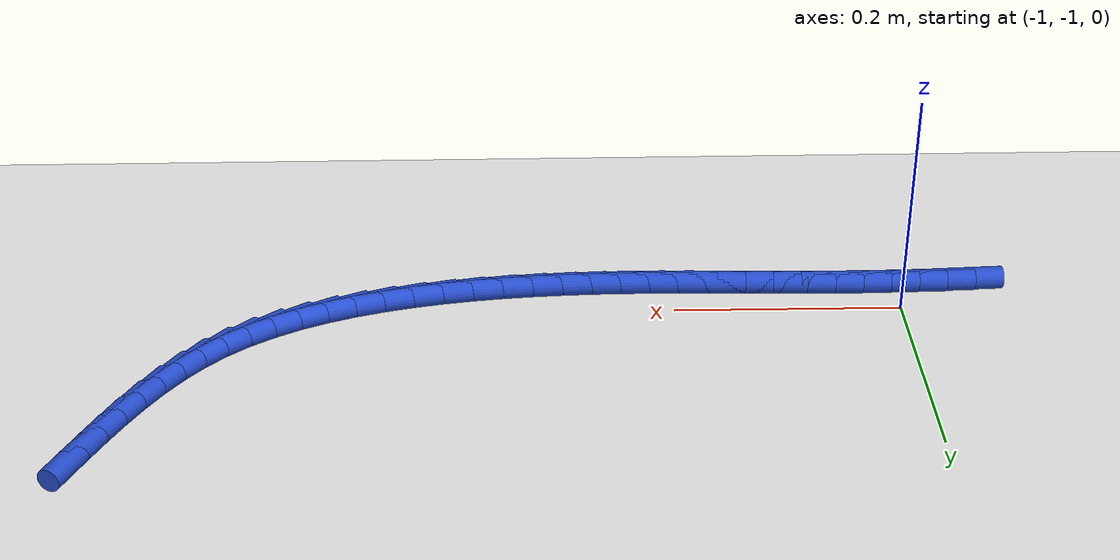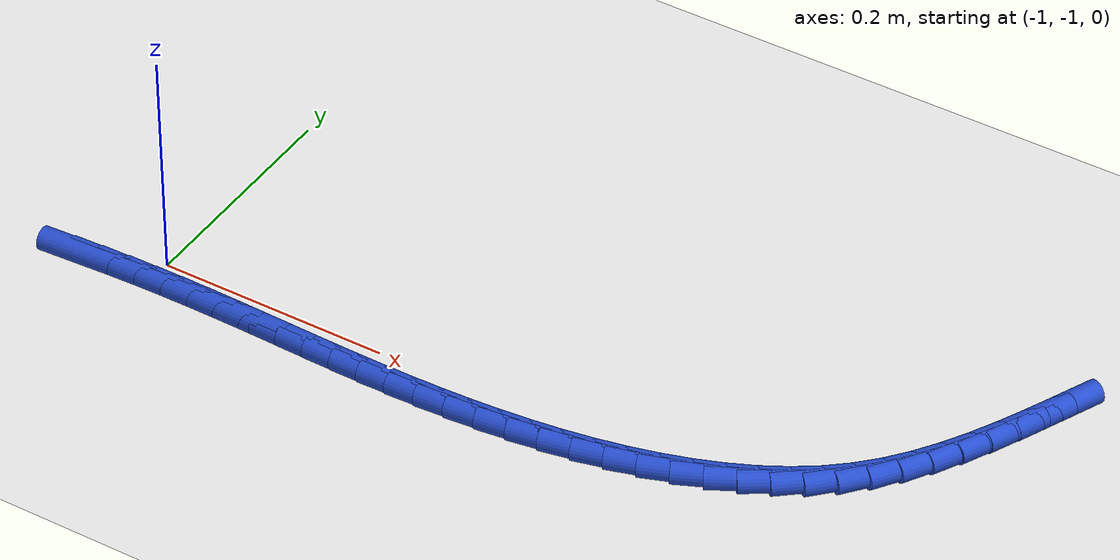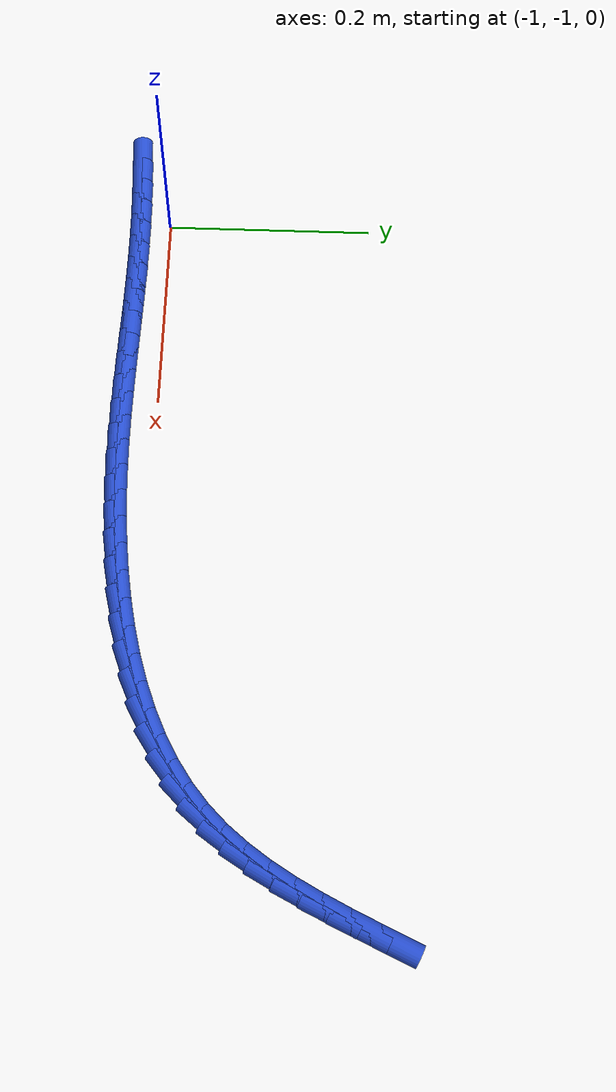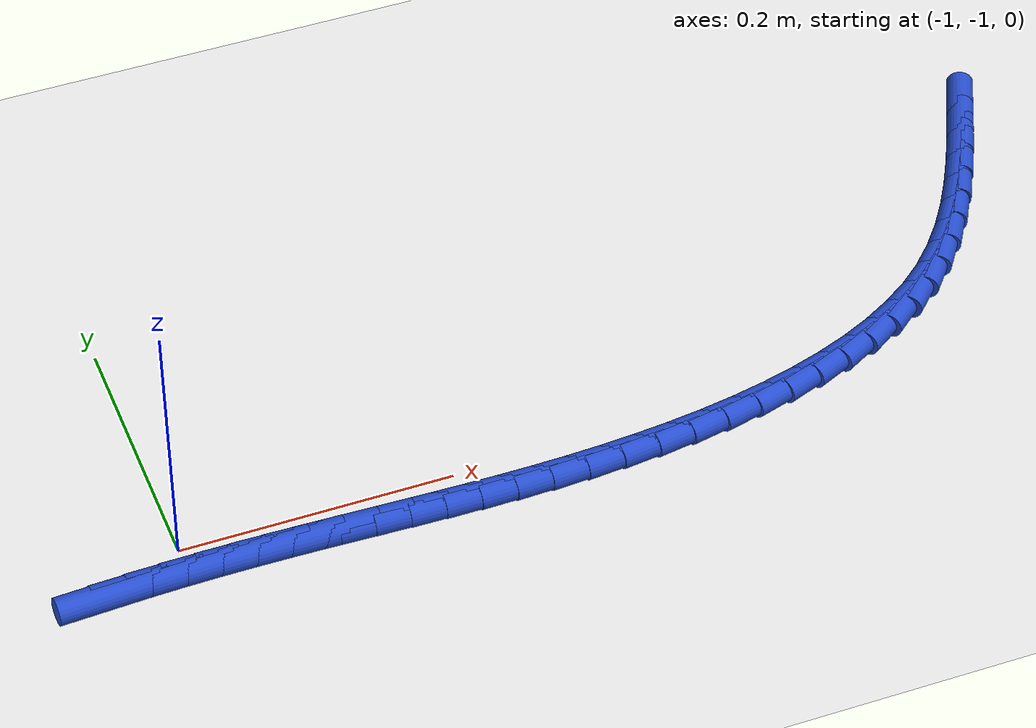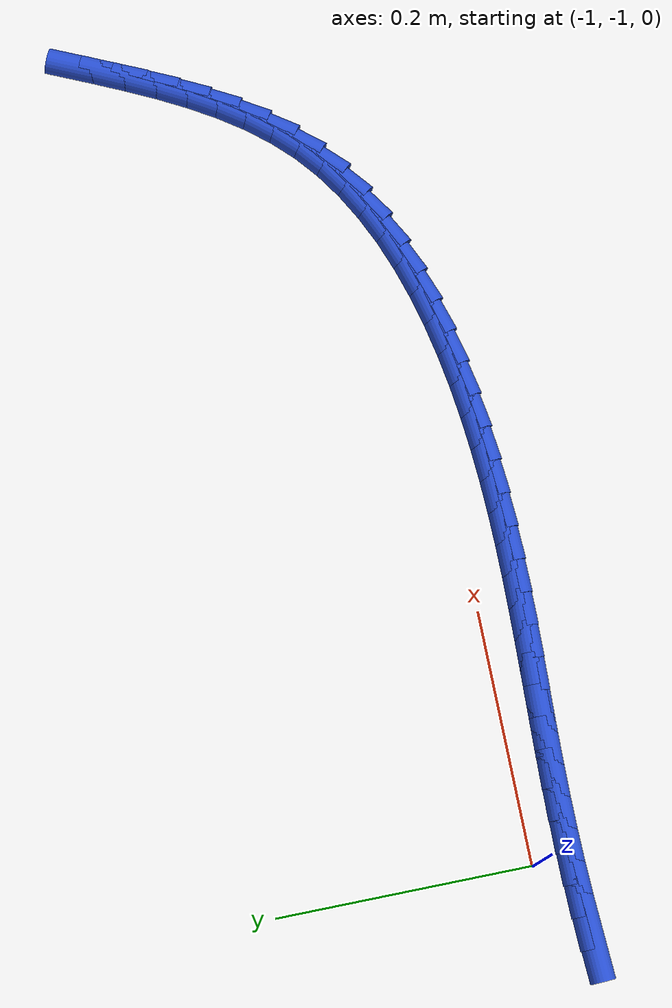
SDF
<sdf version="1.6">
 <world name="default">
  <model name="ground_plane">
   <static>1</static>
   <link name="link">
    <collision name="collision">
     <geometry><plane><normal>0 0 1</normal><size>100 100</size></plane></geometry>
     <surface><friction><ode><mu>100</mu><mu2>50</mu2></ode></friction></surface>
    </collision>
    <visual name="visual">
     <cast_shadows>0</cast_shadows>
     <geometry><plane><normal>0 0 1</normal><size>100 100</size></plane></geometry>
     <material>
      <script><uri>file://media/materials/scripts/gazebo.material</uri><name>Gazebo/WhiteGlow</name></script>
     </material>
    </visual>
   </link>
  </model>
  <model name="line">
   <link name="link_203">
    <pose>-1.055503518104487 -1.0314626179936124 0.01 0 1.57 0.05116919526881509</pose>
    <collision name="collision">
     <geometry><cylinder><radius>0.01</radius><length>0.08</length></cylinder></geometry>
    </collision>
    <visual name="visual">
     <material>
      <script><name>Gazebo/Blue</name><uri>file://media/materials/scripts/gazebo.material</uri></script>
     </material>
     <geometry><cylinder><radius>0.01</radius><length>0.08</length></cylinder></geometry>
    </visual>
   </link>
   <link name="link_204">
    <pose>-1.0299908958753847 -1.0301560170939996 0.01 0 1.57 0.03235450634600982</pose>
    <collision name="collision">
     <geometry><cylinder><radius>0.01</radius><length>0.08</length></cylinder></geometry>
    </collision>
    <visual name="visual">
     <material>
      <script><name>Gazebo/Blue</name><uri>file://media/materials/scripts/gazebo.material</uri></script>
     </material>
     <geometry><cylinder><radius>0.01</radius><length>0.08</length></cylinder></geometry>
    </visual>
   </link>
   <link name="link_205">
    <pose>-1.0047419205032666 -1.0293388137868804 0.01 0 1.57 0.015547220948372463</pose>
    <collision name="collision">
     <geometry><cylinder><radius>0.01</radius><length>0.08</length></cylinder></geometry>
    </collision>
    <visual name="visual">
     <material>
      <script><name>Gazebo/Blue</name><uri>file://media/materials/scripts/gazebo.material</uri></script>
     </material>
     <geometry><cylinder><radius>0.01</radius><length>0.08</length></cylinder></geometry>
    </visual>
   </link>
   <link name="link_206">
    <pose>-0.979693022875678 -1.028949341659887 0.01 0 1.57 0.0009395868197512562</pose>
    <collision name="collision">
     <geometry><cylinder><radius>0.01</radius><length>0.08</length></cylinder></geometry>
    </collision>
    <visual name="visual">
     <material>
      <script><name>Gazebo/Blue</name><uri>file://media/materials/scripts/gazebo.material</uri></script>
     </material>
     <geometry><cylinder><radius>0.01</radius><length>0.08</length></cylinder></geometry>
    </visual>
   </link>
   <link name="link_207">
    <pose>-0.9547806338801602 -1.02892593430065 0.01 0 1.57 -0.011311805094851426</pose>
    <collision name="collision">
     <geometry><cylinder><radius>0.01</radius><length>0.08</length></cylinder></geometry>
    </collision>
    <visual name="visual">
     <material>
      <script><name>Gazebo/Blue</name><uri>file://media/materials/scripts/gazebo.material</uri></script>
     </material>
     <geometry><cylinder><radius>0.01</radius><length>0.08</length></cylinder></geometry>
    </visual>
   </link>
   <link name="link_208">
    <pose>-0.9299411844042598 -1.0292069252968026 0.01 0 1.57 -0.021087880897825772</pose>
    <collision name="collision">
     <geometry><cylinder><radius>0.01</radius><length>0.08</length></cylinder></geometry>
    </collision>
    <visual name="visual">
     <material>
      <script><name>Gazebo/Blue</name><uri>file://media/materials/scripts/gazebo.material</uri></script>
     </material>
     <geometry><cylinder><radius>0.01</radius><length>0.08</length></cylinder></geometry>
    </visual>
   </link>
   <link name="link_209">
    <pose>-0.9051111291944398 -1.0297306161742763 0.01 0 1.57 -0.02786765063158776</pose>
    <collision name="collision">
     <geometry><cylinder><radius>0.01</radius><length>0.08</length></cylinder></geometry>
    </collision>
    <visual name="visual">
     <material>
      <script><name>Gazebo/Blue</name><uri>file://media/materials/scripts/gazebo.material</uri></script>
     </material>
     <geometry><cylinder><radius>0.01</radius><length>0.08</length></cylinder></geometry>
    </visual>
   </link>
   <link name="link_210">
    <pose>-0.8802353188550616 -1.0304240260773718 0.01 0 1.57 -0.03053642817837763</pose>
    <collision name="collision">
     <geometry><cylinder><radius>0.01</radius><length>0.08</length></cylinder></geometry>
    </collision>
    <visual name="visual">
     <material>
      <script><name>Gazebo/Blue</name><uri>file://media/materials/scripts/gazebo.material</uri></script>
     </material>
     <geometry><cylinder><radius>0.01</radius><length>0.08</length></cylinder></geometry>
    </visual>
   </link>
   <link name="link_211">
    <pose>-0.8552793244216084 -1.0311863299664512 0.01 0 1.57 -0.02895985085039378</pose>
    <collision name="collision">
     <geometry><cylinder><radius>0.01</radius><length>0.08</length></cylinder></geometry>
    </collision>
    <visual name="visual">
     <material>
      <script><name>Gazebo/Blue</name><uri>file://media/materials/scripts/gazebo.material</uri></script>
     </material>
     <geometry><cylinder><radius>0.01</radius><length>0.08</length></cylinder></geometry>
    </visual>
   </link>
   <link name="link_212">
    <pose>-0.8302118570514411 -1.0319124830957045 0.01 0 1.57 -0.023199022746931988</pose>
    <collision name="collision">
     <geometry><cylinder><radius>0.01</radius><length>0.08</length></cylinder></geometry>
    </collision>
    <visual name="visual">
     <material>
      <script><name>Gazebo/Blue</name><uri>file://media/materials/scripts/gazebo.material</uri></script>
     </material>
     <geometry><cylinder><radius>0.01</radius><length>0.08</length></cylinder></geometry>
    </visual>
   </link>
   <link name="link_213">
    <pose>-0.805001627901918 -1.0324974407193208 0.01 0 1.57 -0.013342796184821693</pose>
    <collision name="collision">
     <geometry><cylinder><radius>0.01</radius><length>0.08</length></cylinder></geometry>
    </collision>
    <visual name="visual">
     <material>
      <script><name>Gazebo/Blue</name><uri>file://media/materials/scripts/gazebo.material</uri></script>
     </material>
     <geometry><cylinder><radius>0.01</radius><length>0.08</length></cylinder></geometry>
    </visual>
   </link>
   <link name="link_214">
    <pose>-0.7796173481304003 -1.0328361580914909 0.01 0 1.57 0.0004911219647559427</pose>
    <collision name="collision">
     <geometry><cylinder><radius>0.01</radius><length>0.08</length></cylinder></geometry>
    </collision>
    <visual name="visual">
     <material>
      <script><name>Gazebo/Blue</name><uri>file://media/materials/scripts/gazebo.material</uri></script>
     </material>
     <geometry><cylinder><radius>0.01</radius><length>0.08</length></cylinder></geometry>
    </visual>
   </link>
   <link name="link_215">
    <pose>-0.7540277288942467 -1.0328235904664038 0.01 0 1.57 0.018153851268258067</pose>
    <collision name="collision">
     <geometry><cylinder><radius>0.01</radius><length>0.08</length></cylinder></geometry>
    </collision>
    <visual name="visual">
     <material>
      <script><name>Gazebo/Blue</name><uri>file://media/materials/scripts/gazebo.material</uri></script>
     </material>
     <geometry><cylinder><radius>0.01</radius><length>0.08</length></cylinder></geometry>
    </visual>
   </link>
   <link name="link_216">
    <pose>-0.7282014813508167 -1.0323546930982506 0.01 0 1.57 0.03946234751802469</pose>
    <collision name="collision">
     <geometry><cylinder><radius>0.01</radius><length>0.08</length></cylinder></geometry>
    </collision>
    <visual name="visual">
     <material>
      <script><name>Gazebo/Blue</name><uri>file://media/materials/scripts/gazebo.material</uri></script>
     </material>
     <geometry><cylinder><radius>0.01</radius><length>0.08</length></cylinder></geometry>
    </visual>
   </link>
   <link name="link_217">
    <pose>-0.7021073166574707 -1.03132442124122 0.01 0 1.57 0.06420130915071012</pose>
    <collision name="collision">
     <geometry><cylinder><radius>0.01</radius><length>0.08</length></cylinder></geometry>
    </collision>
    <visual name="visual">
     <material>
      <script><name>Gazebo/Blue</name><uri>file://media/materials/scripts/gazebo.material</uri></script>
     </material>
     <geometry><cylinder><radius>0.01</radius><length>0.08</length></cylinder></geometry>
    </visual>
   </link>
   <link name="link_218">
    <pose>-0.6757184272733048 -1.0296278884274 0.01 0 1.57 0.09234518706290203</pose>
    <collision name="collision">
     <geometry><cylinder><radius>0.01</radius><length>0.08</length></cylinder></geometry>
    </collision>
    <visual name="visual">
     <material>
      <script><name>Gazebo/Blue</name><uri>file://media/materials/scripts/gazebo.material</uri></script>
     </material>
     <geometry><cylinder><radius>0.01</radius><length>0.08</length></cylinder></geometry>
    </visual>
   </link>
   <link name="link_219">
    <pose>-0.6491115858552303 -1.0271638666026233 0.01 0 1.57 0.12430144357363872</pose>
    <collision name="collision">
     <geometry><cylinder><radius>0.01</radius><length>0.08</length></cylinder></geometry>
    </collision>
    <visual name="visual">
     <material>
      <script><name>Gazebo/Blue</name><uri>file://media/materials/scripts/gazebo.material</uri></script>
     </material>
     <geometry><cylinder><radius>0.01</radius><length>0.08</length></cylinder></geometry>
    </visual>
   </link>
   <link name="link_220">
    <pose>-0.6224674295301232 -1.0238347961668557 0.01 0 1.57 0.16057230821887722</pose>
    <collision name="collision">
     <geometry><cylinder><radius>0.01</radius><length>0.08</length></cylinder></geometry>
    </collision>
    <visual name="visual">
     <material>
      <script><name>Gazebo/Blue</name><uri>file://media/materials/scripts/gazebo.material</uri></script>
     </material>
     <geometry><cylinder><radius>0.01</radius><length>0.08</length></cylinder></geometry>
    </visual>
   </link>
   <link name="link_221">
    <pose>-0.5959711335811644 -1.0195432778060414 0.01 0 1.57 0.20175462660383947</pose>
    <collision name="collision">
     <geometry><cylinder><radius>0.01</radius><length>0.08</length></cylinder></geometry>
    </collision>
    <visual name="visual">
     <material>
      <script><name>Gazebo/Blue</name><uri>file://media/materials/scripts/gazebo.material</uri></script>
     </material>
     <geometry><cylinder><radius>0.01</radius><length>0.08</length></cylinder></geometry>
    </visual>
   </link>
   <link name="link_222">
    <pose>-0.5698078732915319 -1.014191912206125 0.01 0 1.57 0.24854820992951618</pose>
    <collision name="collision">
     <geometry><cylinder><radius>0.01</radius><length>0.08</length></cylinder></geometry>
    </collision>
    <visual name="visual">
     <material>
      <script><name>Gazebo/Blue</name><uri>file://media/materials/scripts/gazebo.material</uri></script>
     </material>
     <geometry><cylinder><radius>0.01</radius><length>0.08</length></cylinder></geometry>
    </visual>
   </link>
   <link name="link_223">
    <pose>-0.5441628239444066 -1.007683300053051 0.01 0 1.57 0.301751718233303</pose>
    <collision name="collision">
     <geometry><cylinder><radius>0.01</radius><length>0.08</length></cylinder></geometry>
    </collision>
    <visual name="visual">
     <material>
      <script><name>Gazebo/Blue</name><uri>file://media/materials/scripts/gazebo.material</uri></script>
     </material>
     <geometry><cylinder><radius>0.01</radius><length>0.08</length></cylinder></geometry>
    </visual>
   </link>
   <link name="link_224">
    <pose>-0.5192211608229665 -0.999920042032763 0.01 0 1.57 0.362243005889334</pose>
    <collision name="collision">
     <geometry><cylinder><radius>0.01</radius><length>0.08</length></cylinder></geometry>
    </collision>
    <visual name="visual">
     <material>
      <script><name>Gazebo/Blue</name><uri>file://media/materials/scripts/gazebo.material</uri></script>
     </material>
     <geometry><cylinder><radius>0.01</radius><length>0.08</length></cylinder></geometry>
    </visual>
   </link>
   <link name="link_225">
    <pose>-0.49516805921039253 -0.9908047388312065 0.01 0 1.57 0.43093183351304926</pose>
    <collision name="collision">
     <geometry><cylinder><radius>0.01</radius><length>0.08</length></cylinder></geometry>
    </collision>
    <visual name="visual">
     <material>
      <script><name>Gazebo/Blue</name><uri>file://media/materials/scripts/gazebo.material</uri></script>
     </material>
     <geometry><cylinder><radius>0.01</radius><length>0.08</length></cylinder></geometry>
    </visual>
   </link>
   <link name="link_226">
    <pose>-0.47218869438986333 -0.9802399911343254 0.01 0 1.57 0.5086687914887272</pose>
    <collision name="collision">
     <geometry><cylinder><radius>0.01</radius><length>0.08</length></cylinder></geometry>
    </collision>
    <visual name="visual">
     <material>
      <script><name>Gazebo/Blue</name><uri>file://media/materials/scripts/gazebo.material</uri></script>
     </material>
     <geometry><cylinder><radius>0.01</radius><length>0.08</length></cylinder></geometry>
    </visual>
   </link>
   <link name="link_227">
    <pose>-0.45046824164455784 -0.968128399628064 0.01 0 1.57 0.5960935173491837</pose>
    <collision name="collision">
     <geometry><cylinder><radius>0.01</radius><length>0.08</length></cylinder></geometry>
    </collision>
    <visual name="visual">
     <material>
      <script><name>Gazebo/Blue</name><uri>file://media/materials/scripts/gazebo.material</uri></script>
     </material>
     <geometry><cylinder><radius>0.01</radius><length>0.08</length></cylinder></geometry>
    </visual>
   </link>
   <link name="link_228">
    <pose>-0.4301918762576565 -0.9543725649983671 0.01 0 1.57 0.6934142784706429</pose>
    <collision name="collision">
     <geometry><cylinder><radius>0.01</radius><length>0.08</length></cylinder></geometry>
    </collision>
    <visual name="visual">
     <material>
      <script><name>Gazebo/Blue</name><uri>file://media/materials/scripts/gazebo.material</uri></script>
     </material>
     <geometry><cylinder><radius>0.01</radius><length>0.08</length></cylinder></geometry>
    </visual>
   </link>
   <link name="link_229">
    <pose>-0.4115447657375273 -0.9388750938350864 0.01 0 1.57 0.7960499039054105</pose>
    <collision name="collision">
     <geometry><cylinder><radius>0.01</radius><length>0.08</length></cylinder></geometry>
    </collision>
    <visual name="visual">
     <material>
      <script><name>Gazebo/Blue</name><uri>file://media/materials/scripts/gazebo.material</uri></script>
     </material>
     <geometry><cylinder><radius>0.01</radius><length>0.08</length></cylinder></geometry>
    </visual>
   </link>
   <link name="link_230">
    <pose>-0.39463271115495435 -0.9215988607101564 0.01 0 1.57 0.8883816420700753</pose>
    <collision name="collision">
     <geometry><cylinder><radius>0.01</radius><length>0.08</length></cylinder></geometry>
    </collision>
    <visual name="visual">
     <material>
      <script><name>Gazebo/Blue</name><uri>file://media/materials/scripts/gazebo.material</uri></script>
     </material>
     <geometry><cylinder><radius>0.01</radius><length>0.08</length></cylinder></geometry>
    </visual>
   </link>
   <link name="link_231">
    <pose>-0.379286787784067 -0.9027153569596414 0.01 0 1.57 0.9661808232490863</pose>
    <collision name="collision">
     <geometry><cylinder><radius>0.01</radius><length>0.08</length></cylinder></geometry>
    </collision>
    <visual name="visual">
     <material>
      <script><name>Gazebo/Blue</name><uri>file://media/materials/scripts/gazebo.material</uri></script>
     </material>
     <geometry><cylinder><radius>0.01</radius><length>0.08</length></cylinder></geometry>
    </visual>
   </link>
   <link name="link_232">
    <pose>-0.3652786690578189 -0.8824411815143124 0.01 0 1.57 1.0293595492187555</pose>
    <collision name="collision">
     <geometry><cylinder><radius>0.01</radius><length>0.08</length></cylinder></geometry>
    </collision>
    <visual name="visual">
     <material>
      <script><name>Gazebo/Blue</name><uri>file://media/materials/scripts/gazebo.material</uri></script>
     </material>
     <geometry><cylinder><radius>0.01</radius><length>0.08</length></cylinder></geometry>
    </visual>
   </link>
   <link name="link_233">
    <pose>-0.35238002840916155 -0.8609929333049371 0.01 0 1.57 1.0784870840465164</pose>
    <collision name="collision">
     <geometry><cylinder><radius>0.01</radius><length>0.08</length></cylinder></geometry>
    </collision>
    <visual name="visual">
     <material>
      <script><name>Gazebo/Blue</name><uri>file://media/materials/scripts/gazebo.material</uri></script>
     </material>
     <geometry><cylinder><radius>0.01</radius><length>0.08</length></cylinder></geometry>
    </visual>
   </link>
   <link name="link_234">
    <pose>-0.34036253927104826 -0.8385872112622871 0.01 0 1.57 1.1143855678152346</pose>
    <collision name="collision">
     <geometry><cylinder><radius>0.01</radius><length>0.08</length></cylinder></geometry>
    </collision>
    <visual name="visual">
     <material>
      <script><name>Gazebo/Blue</name><uri>file://media/materials/scripts/gazebo.material</uri></script>
     </material>
     <geometry><cylinder><radius>0.01</radius><length>0.08</length></cylinder></geometry>
    </visual>
   </link>
   <link name="link_235">
    <pose>-0.32899787507643113 -0.8154406143171303 0.01 0 1.57 1.1378611329660628</pose>
    <collision name="collision">
     <geometry><cylinder><radius>0.01</radius><length>0.08</length></cylinder></geometry>
    </collision>
    <visual name="visual">
     <material>
      <script><name>Gazebo/Blue</name><uri>file://media/materials/scripts/gazebo.material</uri></script>
     </material>
     <geometry><cylinder><radius>0.01</radius><length>0.08</length></cylinder></geometry>
    </visual>
   </link>
   <link name="link_236">
    <pose>-0.31805770925826227 -0.7917697414002356 0.01 0 1.57 1.1495511492693444</pose>
    <collision name="collision">
     <geometry><cylinder><radius>0.01</radius><length>0.08</length></cylinder></geometry>
    </collision>
    <visual name="visual">
     <material>
      <script><name>Gazebo/Blue</name><uri>file://media/materials/scripts/gazebo.material</uri></script>
     </material>
     <geometry><cylinder><radius>0.01</radius><length>0.08</length></cylinder></geometry>
    </visual>
   </link>
  </model>
 </world>
</sdf>
